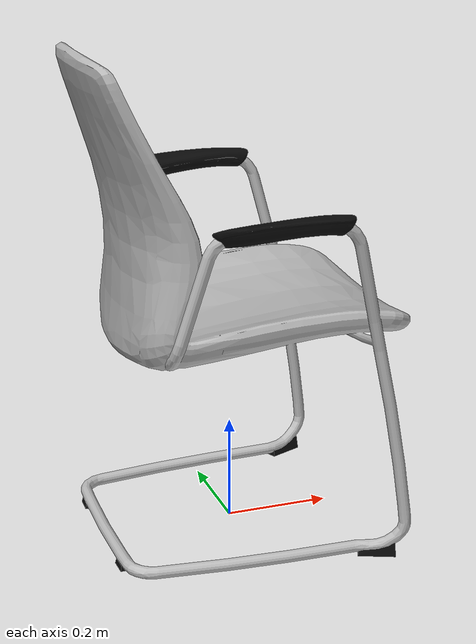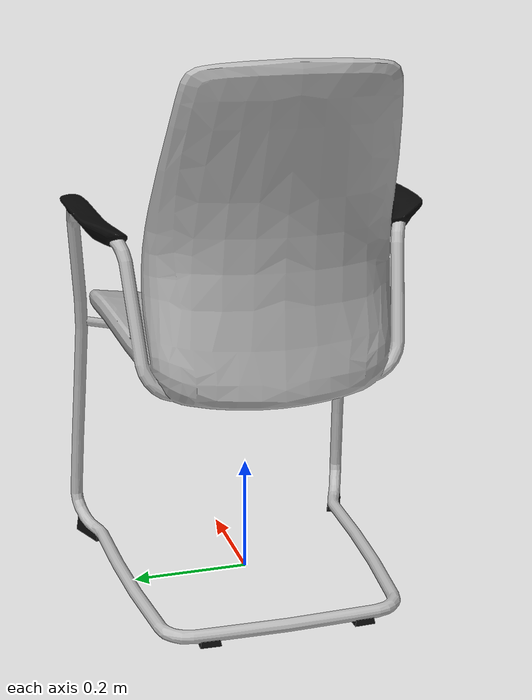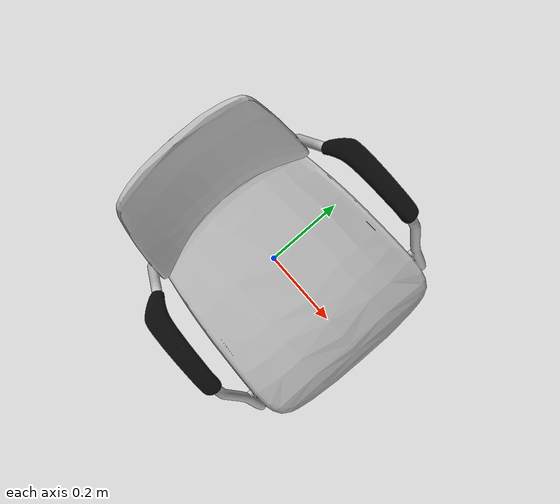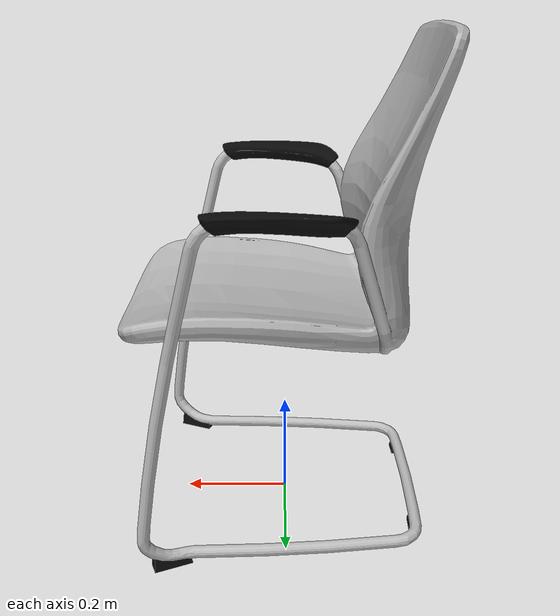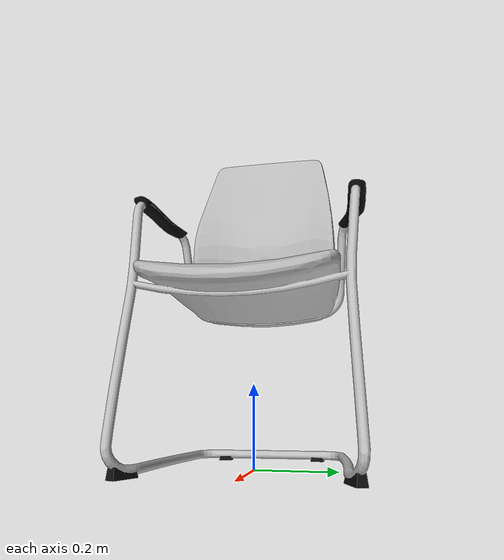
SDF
<?xml version='1.0'?>
<sdf version='1.6'>
  <model name='h_chair'>
    <link name='link_0'>
      <pose frame=''>0 0 0 0 -0 0</pose>
      <inertial>
        <mass>1</mass>
        <inertia>
          <ixx>0.166667</ixx>
          <ixy>0</ixy>
          <ixz>0</ixz>
          <iyy>0.166667</iyy>
          <iyz>0</iyz>
          <izz>0.166667</izz>
        </inertia>
        <pose frame=''>0 0 0 0 -0 0</pose>
      </inertial>
      <gravity>1</gravity>
      <self_collide>0</self_collide>
      <kinematic>0</kinematic>
      <visual name='visual'>
        <pose frame=''>0 0 0 0 -0 0</pose>
        <geometry>
          <mesh>
            <uri>model://h_chair/meshes/chair.dae</uri>
            <scale>1 1 1</scale>
          </mesh>
        </geometry>
      </visual>
      <collision name='collision_4'>
        <laser_retro>0</laser_retro>
        <max_contacts>10</max_contacts>
        <pose frame=''>0 0 0.41 0 -0 0</pose>
        <geometry>
          <box>
            <size>0.5 0.45 0.05</size>
          </box>
        </geometry>
        <surface>
          <friction>
            <ode>
              <mu>1</mu>
              <mu2>1</mu2>
              <fdir1>0 0 0</fdir1>
              <slip1>0</slip1>
              <slip2>0</slip2>
            </ode>
            <torsional>
              <coefficient>1</coefficient>
              <patch_radius>0</patch_radius>
              <surface_radius>0</surface_radius>
              <use_patch_radius>1</use_patch_radius>
              <ode>
                <slip>0</slip>
              </ode>
            </torsional>
          </friction>
          <bounce>
            <restitution_coefficient>0</restitution_coefficient>
            <threshold>1e+06</threshold>
          </bounce>
          <contact>
            <collide_without_contact>0</collide_without_contact>
            <collide_without_contact_bitmask>1</collide_without_contact_bitmask>
            <collide_bitmask>1</collide_bitmask>
            <ode>
              <soft_cfm>0</soft_cfm>
              <soft_erp>0.2</soft_erp>
              <kp>1e+13</kp>
              <kd>1</kd>
              <max_vel>0.01</max_vel>
              <min_depth>0</min_depth>
            </ode>
            <bullet>
              <split_impulse>1</split_impulse>
              <split_impulse_penetration_threshold>-0.01</split_impulse_penetration_threshold>
              <soft_cfm>0</soft_cfm>
              <soft_erp>0.2</soft_erp>
              <kp>1e+13</kp>
              <kd>1</kd>
            </bullet>
          </contact>
        </surface>
      </collision>
      <collision name='collision_3'>
        <laser_retro>0</laser_retro>
        <max_contacts>10</max_contacts>
        <pose frame=''>0 0 0.01 0 -0 0</pose>
        <geometry>
          <box>
            <size>0.5 0.45 0.01</size>
          </box>
        </geometry>
        <surface>
          <friction>
            <ode>
              <mu>1</mu>
              <mu2>1</mu2>
              <fdir1>0 0 0</fdir1>
              <slip1>0</slip1>
              <slip2>0</slip2>
            </ode>
            <torsional>
              <coefficient>1</coefficient>
              <patch_radius>0</patch_radius>
              <surface_radius>0</surface_radius>
              <use_patch_radius>1</use_patch_radius>
              <ode>
                <slip>0</slip>
              </ode>
            </torsional>
          </friction>
          <bounce>
            <restitution_coefficient>0</restitution_coefficient>
            <threshold>1e+06</threshold>
          </bounce>
          <contact>
            <collide_without_contact>0</collide_without_contact>
            <collide_without_contact_bitmask>1</collide_without_contact_bitmask>
            <collide_bitmask>1</collide_bitmask>
            <ode>
              <soft_cfm>0</soft_cfm>
              <soft_erp>0.2</soft_erp>
              <kp>1e+13</kp>
              <kd>1</kd>
              <max_vel>0.01</max_vel>
              <min_depth>0</min_depth>
            </ode>
            <bullet>
              <split_impulse>1</split_impulse>
              <split_impulse_penetration_threshold>-0.01</split_impulse_penetration_threshold>
              <soft_cfm>0</soft_cfm>
              <soft_erp>0.2</soft_erp>
              <kp>1e+13</kp>
              <kd>1</kd>
            </bullet>
          </contact>
        </surface>
      </collision>
      <collision name='collision_5'>
        <laser_retro>0</laser_retro>
        <max_contacts>10</max_contacts>
        <pose frame=''>-0.2 0 0.65 0 -0 0</pose>
        <geometry>
          <box>
            <size>0.05 0.45 0.45</size>
          </box>
        </geometry>
        <surface>
          <friction>
            <ode>
              <mu>1</mu>
              <mu2>1</mu2>
              <fdir1>0 0 0</fdir1>
              <slip1>0</slip1>
              <slip2>0</slip2>
            </ode>
            <torsional>
              <coefficient>1</coefficient>
              <patch_radius>0</patch_radius>
              <surface_radius>0</surface_radius>
              <use_patch_radius>1</use_patch_radius>
              <ode>
                <slip>0</slip>
              </ode>
            </torsional>
          </friction>
          <bounce>
            <restitution_coefficient>0</restitution_coefficient>
            <threshold>1e+06</threshold>
          </bounce>
          <contact>
            <collide_without_contact>0</collide_without_contact>
            <collide_without_contact_bitmask>1</collide_without_contact_bitmask>
            <collide_bitmask>1</collide_bitmask>
            <ode>
              <soft_cfm>0</soft_cfm>
              <soft_erp>0.2</soft_erp>
              <kp>1e+13</kp>
              <kd>1</kd>
              <max_vel>0.01</max_vel>
              <min_depth>0</min_depth>
            </ode>
            <bullet>
              <split_impulse>1</split_impulse>
              <split_impulse_penetration_threshold>-0.01</split_impulse_penetration_threshold>
              <soft_cfm>0</soft_cfm>
              <soft_erp>0.2</soft_erp>
              <kp>1e+13</kp>
              <kd>1</kd>
            </bullet>
          </contact>
        </surface>
      </collision>
      <collision name='collision_6'>
        <laser_retro>0</laser_retro>
        <max_contacts>10</max_contacts>
        <pose frame=''>0.2 -0.25 0.35 0 -0 0</pose>
        <geometry>
          <cylinder>
            <radius>0.01</radius>
            <length>0.7</length>
          </cylinder>
        </geometry>
        <surface>
          <friction>
            <ode>
              <mu>1</mu>
              <mu2>1</mu2>
              <fdir1>0 0 0</fdir1>
              <slip1>0</slip1>
              <slip2>0</slip2>
            </ode>
            <torsional>
              <coefficient>1</coefficient>
              <patch_radius>0</patch_radius>
              <surface_radius>0</surface_radius>
              <use_patch_radius>1</use_patch_radius>
              <ode>
                <slip>0</slip>
              </ode>
            </torsional>
          </friction>
          <bounce>
            <restitution_coefficient>0</restitution_coefficient>
            <threshold>1e+06</threshold>
          </bounce>
          <contact>
            <collide_without_contact>0</collide_without_contact>
            <collide_without_contact_bitmask>1</collide_without_contact_bitmask>
            <collide_bitmask>1</collide_bitmask>
            <ode>
              <soft_cfm>0</soft_cfm>
              <soft_erp>0.2</soft_erp>
              <kp>1e+13</kp>
              <kd>1</kd>
              <max_vel>0.01</max_vel>
              <min_depth>0</min_depth>
            </ode>
            <bullet>
              <split_impulse>1</split_impulse>
              <split_impulse_penetration_threshold>-0.01</split_impulse_penetration_threshold>
              <soft_cfm>0</soft_cfm>
              <soft_erp>0.2</soft_erp>
              <kp>1e+13</kp>
              <kd>1</kd>
            </bullet>
          </contact>
        </surface>
      </collision>
      <collision name='collision_7'>
        <laser_retro>0</laser_retro>
        <max_contacts>10</max_contacts>
        <pose frame=''>0.2 0.25 0.35 0 -0 0</pose>
        <geometry>
          <cylinder>
            <radius>0.01</radius>
            <length>0.7</length>
          </cylinder>
        </geometry>
        <surface>
          <friction>
            <ode>
              <mu>1</mu>
              <mu2>1</mu2>
              <fdir1>0 0 0</fdir1>
              <slip1>0</slip1>
              <slip2>0</slip2>
            </ode>
            <torsional>
              <coefficient>1</coefficient>
              <patch_radius>0</patch_radius>
              <surface_radius>0</surface_radius>
              <use_patch_radius>1</use_patch_radius>
              <ode>
                <slip>0</slip>
              </ode>
            </torsional>
          </friction>
          <bounce>
            <restitution_coefficient>0</restitution_coefficient>
            <threshold>1e+06</threshold>
          </bounce>
          <contact>
            <collide_without_contact>0</collide_without_contact>
            <collide_without_contact_bitmask>1</collide_without_contact_bitmask>
            <collide_bitmask>1</collide_bitmask>
            <ode>
              <soft_cfm>0</soft_cfm>
              <soft_erp>0.2</soft_erp>
              <kp>1e+13</kp>
              <kd>1</kd>
              <max_vel>0.01</max_vel>
              <min_depth>0</min_depth>
            </ode>
            <bullet>
              <split_impulse>1</split_impulse>
              <split_impulse_penetration_threshold>-0.01</split_impulse_penetration_threshold>
              <soft_cfm>0</soft_cfm>
              <soft_erp>0.2</soft_erp>
              <kp>1e+13</kp>
              <kd>1</kd>
            </bullet>
          </contact>
        </surface>
      </collision>
    </link>
    <static>1</static>
    <allow_auto_disable>1</allow_auto_disable>
  </model>
</sdf>
